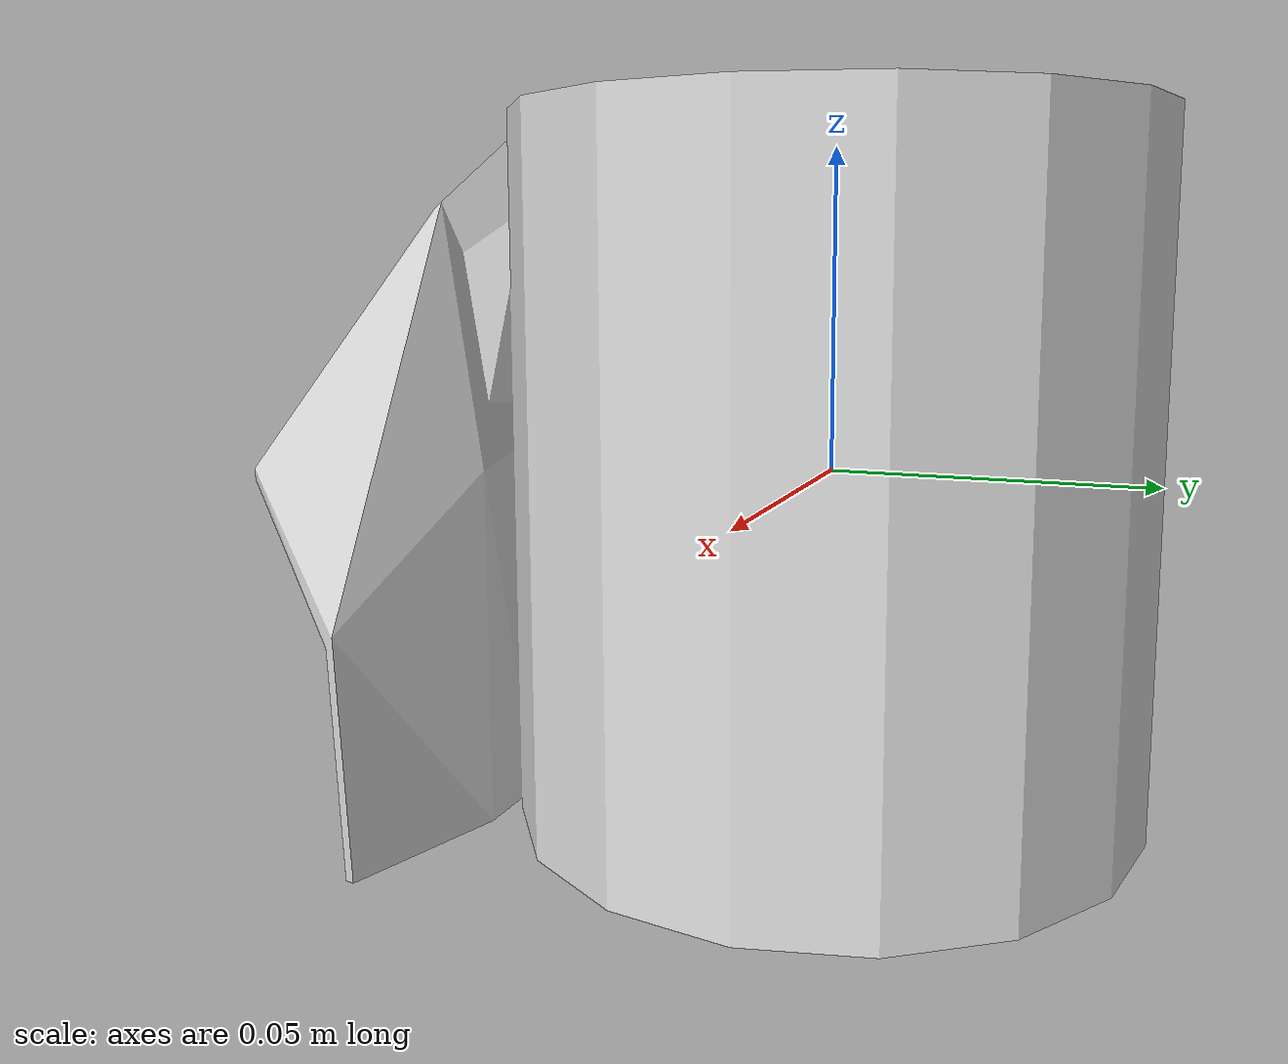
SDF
<?xml version='1.0'?>
<sdf version="1.4">
	<model name="toilet_paper">
		<static>1</static>
		<link name="link">
			<visual name="mesh">
				<geometry>
					<mesh>
						<uri>model://meshes/toilet_paper.dae</uri>
					</mesh>
				</geometry>
			</visual>
			<collision name="collider">
				<pose>0 0 0 0 0 0</pose>
				<geometry>
					<cylinder>
						<radius>0.05</radius>
						<length>0.112</length>
					</cylinder>
				</geometry>
			</collision>
		</link>
	</model>
</sdf>
